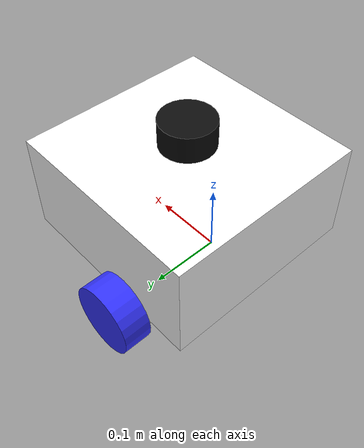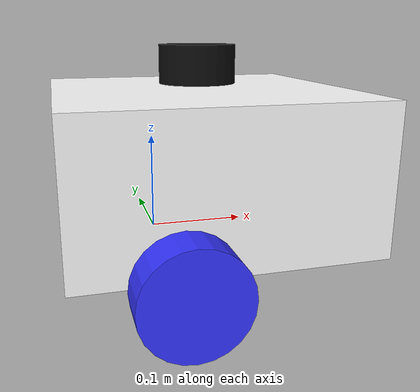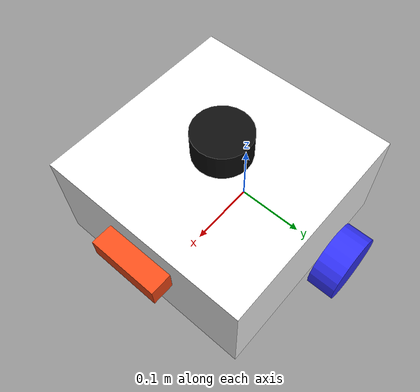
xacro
<?xml version="1.0"?>

<robot xmlns:xacro="http://www.ros.org/wiki/xacro" name="robot">

    <xacro:include filename="robot_core.xacro"/>
    <xacro:include filename="gazebo_control.xacro"/>
    <xacro:include filename="lidar.xacro"/>
    <xacro:include filename="camera.xacro"/>
    <xacro:include filename="imu.xacro"/>

</robot>

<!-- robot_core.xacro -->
<robot xmlns:xacro="http://www.ros.org/wiki/xacro">

    <xacro:include filename="inertial_macros.xacro"/>

    <!-- MATERIALS -->

    <material name="White">
        <color rgba="1 1 1 1"/>
    </material>

    <material name="Blue">
        <color rgba="0.2 0.2 1 1"/>
    </material>

    <material name="Black">
        <color rgba="0 0 0 1"/>
    </material>

    <material name="Orange">
        <color rgba="1 0.3 0.1 1" />
    </material>

    <!-- BASE LINK -->

    <link name="base_link">
    </link>

    <!-- CHASSIS -->

    <joint name="chassis_joint" type="fixed">

        <parent link="base_link"/>
        <child link="chassis"/>

        <origin xyz="-0.1 0 0"/>

    </joint>

    <link name="chassis">

        <visual>

            <origin xyz="0.15 0 0.075"/>

            <geometry>
                <box size="0.3 0.3 0.15"/>
            </geometry>

            <material name="White"/>

        </visual>

        <collision>

            <origin xyz="0.15 0 0.075"/>

            <geometry>
                <box size="0.3 0.3 0.15"/>
            </geometry>

        </collision>

        <xacro:inertial_box
            mass="0.5"
            x="0.3"
            y="0.3"
            z="0.15">

            <origin
                xyz="0.15 0 0.075"
                rpy="0 0 0"/>

        </xacro:inertial_box>

    </link>

    <!-- LEFT WHEEL -->

    <joint name="left_wheel_joint" type="continuous">

        <parent link="base_link"/>
        <child link="left_wheel"/>

        <origin
            xyz="0.0 0.175 0"
            rpy="-${pi/2} 0 0"/>

        <axis xyz="0 0 1"/>

    </joint>

    <link name="left_wheel">

        <visual>

            <geometry>
                <cylinder radius="0.05" length="0.04"/>
            </geometry>

            <material name="Blue"/>

        </visual>

        <collision>

            <geometry>
                <cylinder radius="0.05" length="0.04"/>
            </geometry>

        </collision>

        <xacro:inertial_cylinder
            mass="0.1"
            length="0.04"
            radius="0.05">

            <origin
                xyz="0 0 0"
                rpy="0 0 0"/>

        </xacro:inertial_cylinder>

    </link>
    <gazebo reference="left_wheel">
    <material>Gazebo/Blue</material>
    <mu1>1.0</mu1>
    <mu2>1.0</mu2>
    </gazebo>

    <!-- RIGHT WHEEL -->

    <joint name="right_wheel_joint" type="continuous">

        <parent link="base_link"/>
        <child link="right_wheel"/>

        <origin
            xyz="0 -0.175 0"
            rpy="${pi/2} 0 0"/>

        <axis xyz="0 0 -1"/>

    </joint>

    <link name="right_wheel">

        <visual>

            <geometry>
                <cylinder radius="0.05" length="0.04"/>
            </geometry>

            <material name="Blue"/>

        </visual>

        <collision>

            <geometry>
                <cylinder radius="0.05" length="0.04"/>
            </geometry>

        </collision>

        <xacro:inertial_cylinder
            mass="0.1"
            length="0.04"
            radius="0.05">

            <origin
                xyz="0 0 0"
                rpy="0 0 0"/>

        </xacro:inertial_cylinder>

    </link>
    <gazebo reference="right_wheel">
    <material>Gazebo/Blue</material>
    <mu1>1.0</mu1>
    <mu2>1.0</mu2>
    </gazebo>

    <!-- CASTER WHEEL -->

    <joint name="caster_wheel_joint" type="fixed">

        <parent link="chassis"/>
        <child link="caster_wheel"/>

        <origin xyz="0.24 0 0"/>

    </joint>

    <link name="caster_wheel">

        <visual>

            <geometry>
                <sphere radius="0.05"/>
            </geometry>

            <material name="Black"/>

        </visual>

        <collision>

            <geometry>
                <sphere radius="0.05"/>
            </geometry>

        </collision>

        <xacro:inertial_sphere
            mass="0.1"
            radius="0.05">

            <origin
                xyz="0 0 0"
                rpy="0 0 0"/>

        </xacro:inertial_sphere>

    </link>
    <gazebo reference="caster_wheel">
    <material>Gazebo/Black</material>
    <mu1>0.001</mu1>
    <mu2>0.001</mu2>
    </gazebo>

</robot>

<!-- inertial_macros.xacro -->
<robot xmlns:xacro="http://www.ros.org/wiki/xacro">

    <!-- Box inertia -->
    <xacro:macro name="inertial_box" params="mass x y z *origin">

        <inertial>
            <mass value="${mass}" />

            <inertia
                ixx="${mass / 12.0 * (y*y + z*z)}"
                ixy="0.0"
                ixz="0.0"
                iyy="${mass / 12.0 * (x*x + z*z)}"
                iyz="0.0"
                izz="${mass / 12.0 * (x*x + y*y)}" />

            <xacro:insert_block name="origin" />
        </inertial>

    </xacro:macro>

    <!-- Cylinder inertia -->
    <xacro:macro name="inertial_cylinder" params="mass length radius *origin">

        <inertial>
            <mass value="${mass}" />

            <inertia
                ixx="${mass / 12.0 * (3*radius*radius + length*length)}"
                ixy="0.0"
                ixz="0.0"
                iyy="${mass / 12.0 * (3*radius*radius + length*length)}"
                iyz="0.0"
                izz="${mass / 2.0 * radius*radius}" />

            <xacro:insert_block name="origin" />
        </inertial>

    </xacro:macro>

    <!-- Sphere inertia -->
    <xacro:macro name="inertial_sphere" params="mass radius *origin">

        <inertial>
            <mass value="${mass}" />

            <inertia
                ixx="${2.0 / 5.0 * mass * radius*radius}"
                ixy="0.0"
                ixz="0.0"
                iyy="${2.0 / 5.0 * mass * radius*radius}"
                iyz="0.0"
                izz="${2.0 / 5.0 * mass * radius*radius}" />

            <xacro:insert_block name="origin" />
        </inertial>

    </xacro:macro>

</robot>

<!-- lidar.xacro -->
<robot xmlns:xacro="http://www.ros.org/wiki/xacro">

    <!-- LiDAR physical link -->

    <link name="lidar_link">

        <visual>
            <origin xyz="0 0 0" rpy="0 0 0"/>
            <geometry>
                <cylinder radius="0.04" length="0.04"/>
            </geometry>
            <material name="lidar_black">
                <color rgba="0.05 0.05 0.05 1.0"/>
            </material>
        </visual>

        <collision>
            <origin xyz="0 0 0" rpy="0 0 0"/>
            <geometry>
                <cylinder radius="0.04" length="0.04"/>
            </geometry>
        </collision>

        <xacro:inertial_cylinder mass="0.1" length="0.04" radius="0.04">
            <origin xyz="0 0 0" rpy="0 0 0"/>
        </xacro:inertial_cylinder>

    </link>

    <!-- LiDAR mounting joint -->
    <!-- chassis top = 0.15, lidar half-height = 0.02 -> sits on top -->

    <joint name="lidar_joint" type="fixed">
        <parent link="base_link"/>
        <child link="lidar_link"/>
        <origin xyz="0.05 0 0.175" rpy="0 0 0"/>
    </joint>

    <!-- Gazebo Harmonic LiDAR -->

    <gazebo reference="lidar_link">

        <sensor name="lidar_sensor" type="gpu_lidar">

            <pose>0 0 0 0 0 0</pose>
            <always_on>true</always_on>
            <visualize>true</visualize>
            <update_rate>10</update_rate>
            <topic>scan</topic>
            <gz_frame_id>lidar_link</gz_frame_id>

            <lidar>
                <scan>
                    <horizontal>
                        <samples>720</samples>
                        <resolution>1</resolution>
                        <min_angle>-3.14159265</min_angle>
                        <max_angle>3.14159265</max_angle>
                    </horizontal>
                    <vertical>
                        <samples>1</samples>
                        <resolution>1</resolution>
                        <min_angle>0</min_angle>
                        <max_angle>0</max_angle>
                    </vertical>
                </scan>
                <range>
                    <min>0.12</min>
                    <max>12.0</max>
                    <resolution>0.01</resolution>
                </range>
                <noise>
                    <type>gaussian</type>
                    <mean>0.0</mean>
                    <stddev>0.01</stddev>
                </noise>
            </lidar>

        </sensor>

    </gazebo>

</robot>

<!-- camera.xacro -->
<robot xmlns:xacro="http://www.ros.org/wiki/xacro">

    <!-- Camera physical link -->

    <link name="camera_link">

        <visual>
            <origin xyz="0 0 0" rpy="0 0 0"/>
            <geometry>
                <box size="0.03 0.10 0.03"/>
            </geometry>
            <material name="Orange"/>
        </visual>

        <collision>
            <origin xyz="0 0 0" rpy="0 0 0"/>
            <geometry>
                <box size="0.03 0.10 0.03"/>
            </geometry>
        </collision>

        <xacro:inertial_box mass="0.05" x="0.03" y="0.10" z="0.03">
            <origin xyz="0 0 0" rpy="0 0 0"/>
        </xacro:inertial_box>

    </link>

    <!-- chassis front face = x 0.20 -> camera mounted just in front -->
    <joint name="camera_joint" type="fixed">
        <parent link="base_link"/>
        <child link="camera_link"/>
        <origin xyz="0.215 0 0.10" rpy="0 0 0"/>
    </joint>

    <!-- ROS optical frame: z forward, x right, y down -->
    <link name="camera_optical_link"/>

    <joint name="camera_optical_joint" type="fixed">
        <parent link="camera_link"/>
        <child link="camera_optical_link"/>
        <origin xyz="0 0 0" rpy="${-pi/2} 0 ${-pi/2}"/>
    </joint>

    <!-- Gazebo Harmonic RGB-D camera -->

    <gazebo reference="camera_link">

        <sensor name="rgbd_camera" type="rgbd_camera">

            <pose>0 0 0 0 0 0</pose>
            <always_on>true</always_on>
            <visualize>true</visualize>
            <update_rate>15</update_rate>
            <topic>camera</topic>
            <gz_frame_id>camera_optical_link</gz_frame_id>

            <camera>
                <horizontal_fov>1.047</horizontal_fov>
                <image>
                    <width>640</width>
                    <height>480</height>
                    <format>R8G8B8</format>
                </image>
                <clip>
                    <near>0.1</near>
                    <far>10.0</far>
                </clip>
                <depth_camera>
                    <clip>
                        <near>0.1</near>
                        <far>10.0</far>
                    </clip>
                </depth_camera>
            </camera>

        </sensor>

    </gazebo>

</robot>

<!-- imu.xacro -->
<robot xmlns:xacro="http://www.ros.org/wiki/xacro">

    <link name="imu_link">
        <xacro:inertial_box mass="0.01" x="0.02" y="0.02" z="0.01">
            <origin xyz="0 0 0" rpy="0 0 0"/>
        </xacro:inertial_box>
    </link>

    <!-- centre of the chassis -->
    <joint name="imu_joint" type="fixed">
        <parent link="base_link"/>
        <child link="imu_link"/>
        <origin xyz="0.05 0 0.05" rpy="0 0 0"/>
    </joint>

    <gazebo reference="imu_link">

        <sensor name="imu_sensor" type="imu">

            <always_on>true</always_on>
            <update_rate>100</update_rate>
            <topic>imu</topic>
            <gz_frame_id>imu_link</gz_frame_id>

            <imu>
                <angular_velocity>
                    <x><noise type="gaussian"><mean>0</mean><stddev>0.002</stddev></noise></x>
                    <y><noise type="gaussian"><mean>0</mean><stddev>0.002</stddev></noise></y>
                    <z><noise type="gaussian"><mean>0</mean><stddev>0.002</stddev></noise></z>
                </angular_velocity>
                <linear_acceleration>
                    <x><noise type="gaussian"><mean>0</mean><stddev>0.02</stddev></noise></x>
                    <y><noise type="gaussian"><mean>0</mean><stddev>0.02</stddev></noise></y>
                    <z><noise type="gaussian"><mean>0</mean><stddev>0.02</stddev></noise></z>
                </linear_acceleration>
            </imu>

        </sensor>

    </gazebo>

</robot>
